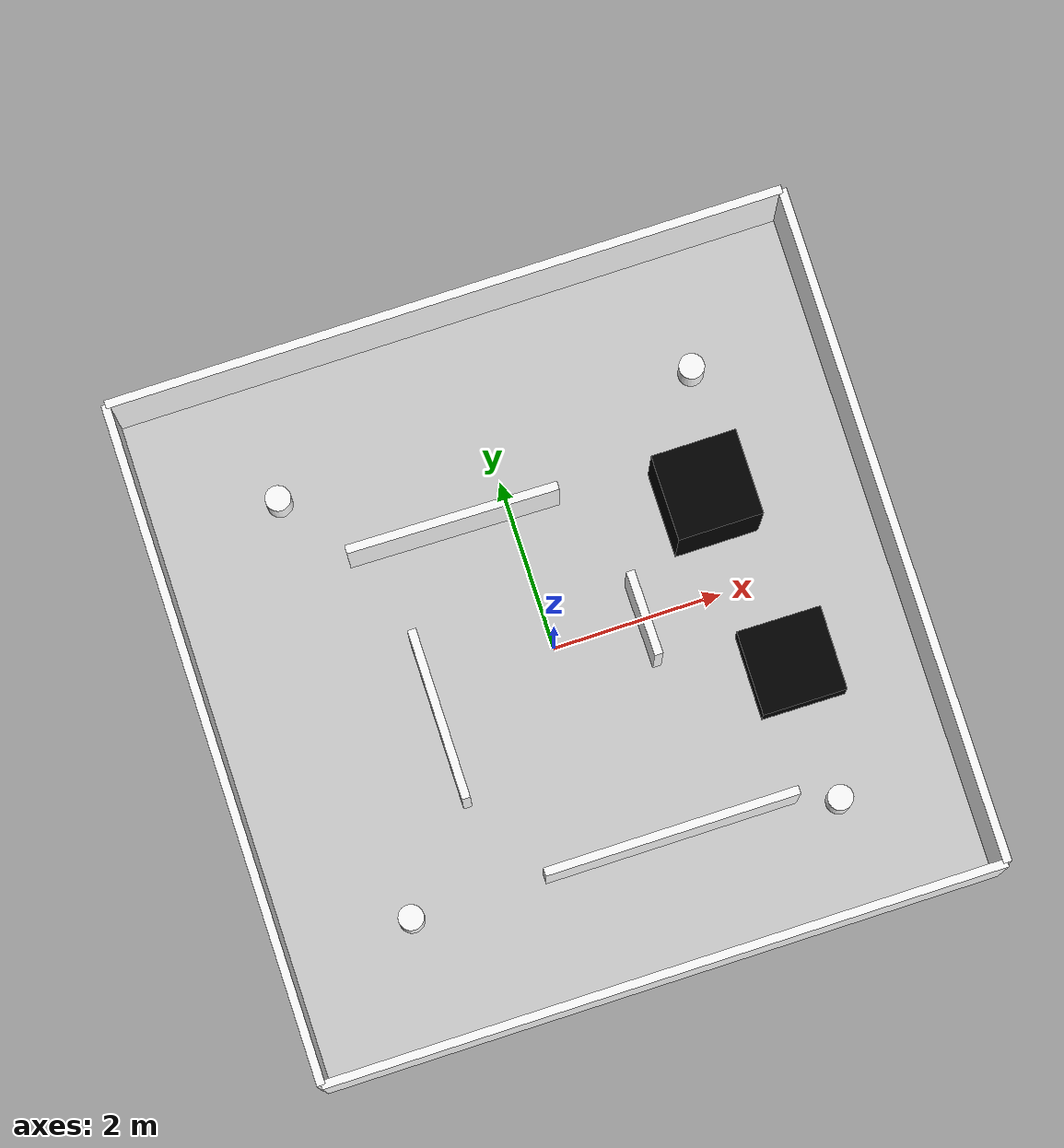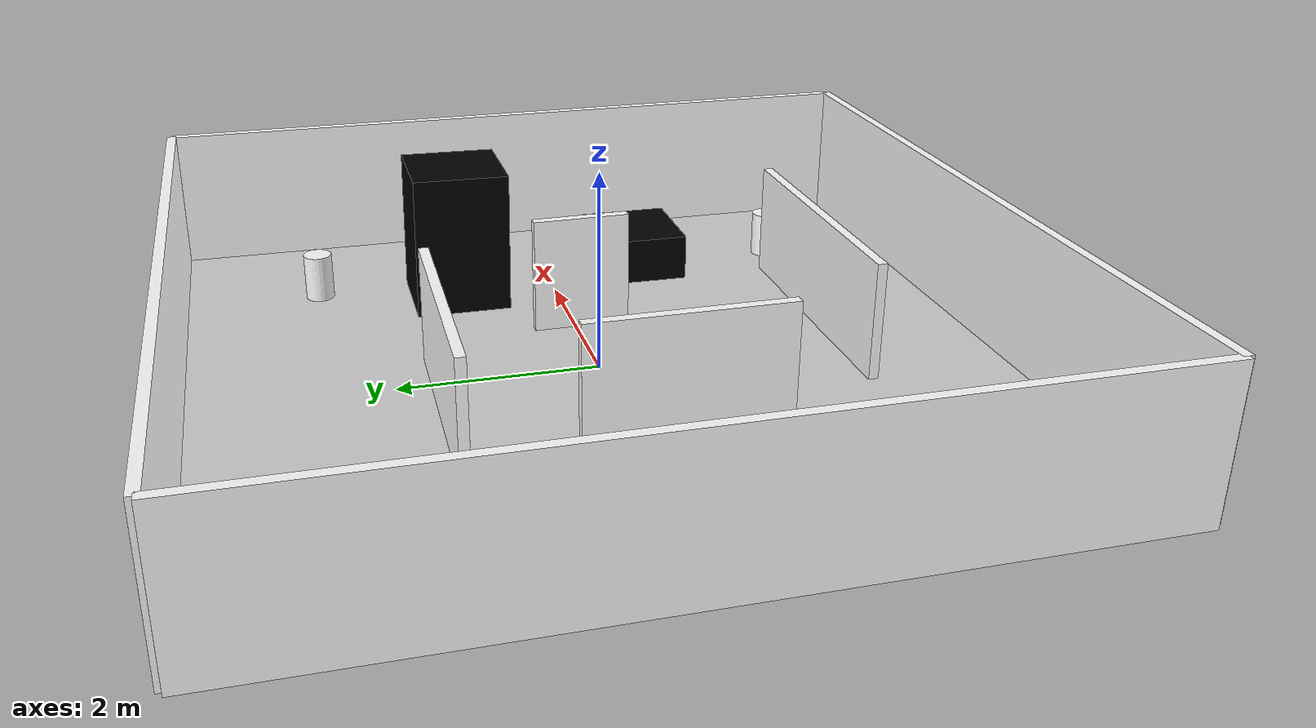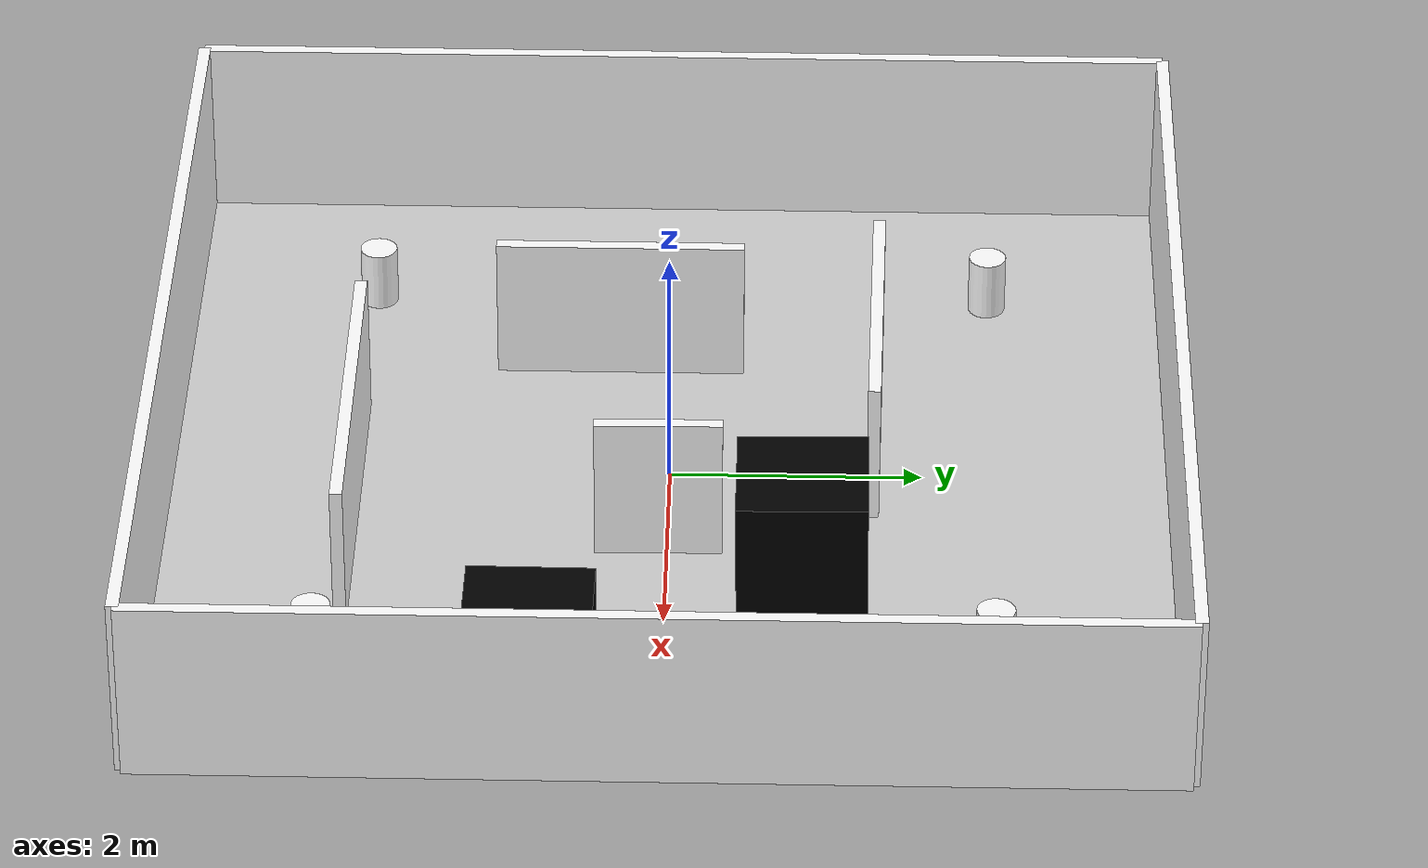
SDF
<sdf version='1.10'>
  <world name='test_env'>
    <scene>
      <ambient>0.600000024 0.600000024 0.600000024 1</ambient>
      <background>0.800000012 0.800000012 0.800000012 1</background>
      <shadows>true</shadows>
    </scene>
    <gravity>0 0 -9.8000000000000007</gravity>
    <magnetic_field>5.5644999999999998e-06 2.2875799999999999e-05 -4.2388400000000002e-05</magnetic_field>
    <atmosphere type='adiabatic'/>
    <physics type='ode'>
      <max_step_size>0.001</max_step_size>
      <real_time_factor>1</real_time_factor>
      <real_time_update_rate>1000</real_time_update_rate>
    </physics>
    <model name='ground'>
      <static>true</static>
      <link name='ground_link'>
        <collision name='ground_collision'>
          <geometry>
            <box>
              <size>8 8 0.01</size>
            </box>
          </geometry>
          <surface>
            <friction>
              <ode/>
            </friction>
            <bounce/>
            <contact/>
          </surface>
        </collision>
        <visual name='ground_visual'>
          <geometry>
            <box>
              <size>8 8 0.01</size>
            </box>
          </geometry>
          <material>
            <ambient>0.800000012 0.800000012 0.800000012 1</ambient>
            <diffuse>0.800000012 0.800000012 0.800000012 1</diffuse>
            <specular>0.200000003 0.200000003 0.200000003 1</specular>
          </material>
        </visual>
        <pose>0 0 0 0 0 0</pose>
        <inertial>
          <pose>0 0 0 0 0 0</pose>
          <mass>1</mass>
          <inertia>
            <ixx>1</ixx>
            <ixy>0</ixy>
            <ixz>0</ixz>
            <iyy>1</iyy>
            <iyz>0</iyz>
            <izz>1</izz>
          </inertia>
        </inertial>
        <enable_wind>false</enable_wind>
      </link>
      <pose>0 0 0 0 0 0</pose>
      <self_collide>false</self_collide>
    </model>
    <model name='wall_north'>
      <static>true</static>
      <pose>0 4 0.75 0 0 0</pose>
      <link name='link'>
        <visual name='wall_north_visual'>
          <geometry>
            <box>
              <size>8 0.10000000000000001 1.5</size>
            </box>
          </geometry>
          <material>
            <ambient>1 1 1 1</ambient>
            <diffuse>1 1 1 1</diffuse>
          </material>
        </visual>
        <collision name='wall_north_collision'>
          <geometry>
            <box>
              <size>8 0.10000000000000001 1.5</size>
            </box>
          </geometry>
          <surface>
            <friction>
              <ode/>
            </friction>
            <bounce/>
            <contact/>
          </surface>
        </collision>
        <pose>0 0 0 0 0 0</pose>
        <inertial>
          <pose>0 0 0 0 0 0</pose>
          <mass>1</mass>
          <inertia>
            <ixx>1</ixx>
            <ixy>0</ixy>
            <ixz>0</ixz>
            <iyy>1</iyy>
            <iyz>0</iyz>
            <izz>1</izz>
          </inertia>
        </inertial>
        <enable_wind>false</enable_wind>
      </link>
      <self_collide>false</self_collide>
    </model>
    <model name='wall_south'>
      <static>true</static>
      <pose>0 -4 0.75 0 0 0</pose>
      <link name='link'>
        <visual name='wall_south_visual'>
          <geometry>
            <box>
              <size>8 0.10000000000000001 1.5</size>
            </box>
          </geometry>
          <material>
            <ambient>1 1 1 1</ambient>
            <diffuse>1 1 1 1</diffuse>
          </material>
        </visual>
        <collision name='wall_south_collision'>
          <geometry>
            <box>
              <size>8 0.10000000000000001 1.5</size>
            </box>
          </geometry>
          <surface>
            <friction>
              <ode/>
            </friction>
            <bounce/>
            <contact/>
          </surface>
        </collision>
        <pose>0 0 0 0 0 0</pose>
        <inertial>
          <pose>0 0 0 0 0 0</pose>
          <mass>1</mass>
          <inertia>
            <ixx>1</ixx>
            <ixy>0</ixy>
            <ixz>0</ixz>
            <iyy>1</iyy>
            <iyz>0</iyz>
            <izz>1</izz>
          </inertia>
        </inertial>
        <enable_wind>false</enable_wind>
      </link>
      <self_collide>false</self_collide>
    </model>
    <model name='wall_east'>
      <static>true</static>
      <pose>4 0 0.75 0 0 1.5708000000000011</pose>
      <link name='link'>
        <visual name='wall_east_visual'>
          <geometry>
            <box>
              <size>8 0.10000000000000001 1.5</size>
            </box>
          </geometry>
          <material>
            <ambient>1 1 1 1</ambient>
            <diffuse>1 1 1 1</diffuse>
          </material>
        </visual>
        <collision name='wall_east_collision'>
          <geometry>
            <box>
              <size>8 0.10000000000000001 1.5</size>
            </box>
          </geometry>
          <surface>
            <friction>
              <ode/>
            </friction>
            <bounce/>
            <contact/>
          </surface>
        </collision>
        <pose>0 0 0 0 0 0</pose>
        <inertial>
          <pose>0 0 0 0 0 0</pose>
          <mass>1</mass>
          <inertia>
            <ixx>1</ixx>
            <ixy>0</ixy>
            <ixz>0</ixz>
            <iyy>1</iyy>
            <iyz>0</iyz>
            <izz>1</izz>
          </inertia>
        </inertial>
        <enable_wind>false</enable_wind>
      </link>
      <self_collide>false</self_collide>
    </model>
    <model name='wall_west'>
      <static>true</static>
      <pose>-4 0 0.75 0 0 1.5708000000000011</pose>
      <link name='link'>
        <visual name='wall_west_visual'>
          <geometry>
            <box>
              <size>8 0.10000000000000001 1.5</size>
            </box>
          </geometry>
          <material>
            <ambient>1 1 1 1</ambient>
            <diffuse>1 1 1 1</diffuse>
          </material>
        </visual>
        <collision name='wall_west_collision'>
          <geometry>
            <box>
              <size>8 0.10000000000000001 1.5</size>
            </box>
          </geometry>
          <surface>
            <friction>
              <ode/>
            </friction>
            <bounce/>
            <contact/>
          </surface>
        </collision>
        <pose>0 0 0 0 0 0</pose>
        <inertial>
          <pose>0 0 0 0 0 0</pose>
          <mass>1</mass>
          <inertia>
            <ixx>1</ixx>
            <ixy>0</ixy>
            <ixz>0</ixz>
            <iyy>1</iyy>
            <iyz>0</iyz>
            <izz>1</izz>
          </inertia>
        </inertial>
        <enable_wind>false</enable_wind>
      </link>
      <self_collide>false</self_collide>
    </model>
    <model name='inner_wall_center'>
      <static>true</static>
      <pose>0.57874101400375366 -2.4953799247741699 0.60000002384185791 0 0 0</pose>
      <link name='link'>
        <visual name='inner_wall_center_visual'>
          <geometry>
            <box>
              <size>3 0.10000000000000001 1.2</size>
            </box>
          </geometry>
          <material>
            <ambient>1 1 1 1</ambient>
            <diffuse>1 1 1 1</diffuse>
          </material>
        </visual>
        <collision name='inner_wall_center_collision'>
          <geometry>
            <box>
              <size>3 0.10000000000000001 1.2</size>
            </box>
          </geometry>
          <surface>
            <friction>
              <ode/>
            </friction>
            <bounce/>
            <contact/>
          </surface>
        </collision>
        <pose>0 0 0 0 0 0</pose>
        <inertial>
          <pose>0 0 0 0 0 0</pose>
          <mass>1</mass>
          <inertia>
            <ixx>1</ixx>
            <ixy>0</ixy>
            <ixz>0</ixz>
            <iyy>1</iyy>
            <iyz>0</iyz>
            <izz>1</izz>
          </inertia>
        </inertial>
        <enable_wind>false</enable_wind>
      </link>
      <self_collide>false</self_collide>
    </model>
    <model name='inner_wall_left'>
      <static>true</static>
      <pose>-1.4999946355819702 -0.44050788879394531 0.60000002384185791 0 0 1.5708000357176291</pose>
      <link name='link'>
        <visual name='inner_wall_left_visual'>
          <geometry>
            <box>
              <size>2 0.10000000000000001 1.2</size>
            </box>
          </geometry>
          <material>
            <ambient>1 1 1 1</ambient>
            <diffuse>1 1 1 1</diffuse>
          </material>
        </visual>
        <collision name='inner_wall_left_collision'>
          <geometry>
            <box>
              <size>2 0.10000000000000001 1.2</size>
            </box>
          </geometry>
          <surface>
            <friction>
              <ode/>
            </friction>
            <bounce/>
            <contact/>
          </surface>
        </collision>
        <pose>0 0 0 0 0 0</pose>
        <inertial>
          <pose>0 0 0 0 0 0</pose>
          <mass>1</mass>
          <inertia>
            <ixx>1</ixx>
            <ixy>0</ixy>
            <ixz>0</ixz>
            <iyy>1</iyy>
            <iyz>0</iyz>
            <izz>1</izz>
          </inertia>
        </inertial>
        <enable_wind>false</enable_wind>
      </link>
      <self_collide>false</self_collide>
    </model>
    <model name='inner_wall_right'>
      <static>true</static>
      <pose>-0.68037950992584229 1.6283901929855347 0.60000002384185791 0 0 -0.015647999861142882</pose>
      <link name='link'>
        <visual name='inner_wall_right_visual'>
          <geometry>
            <box>
              <size>2.5 0.10000000000000001 1.2</size>
            </box>
          </geometry>
          <material>
            <ambient>1 1 1 1</ambient>
            <diffuse>1 1 1 1</diffuse>
          </material>
        </visual>
        <collision name='inner_wall_right_collision'>
          <geometry>
            <box>
              <size>2.5 0.10000000000000001 1.2</size>
            </box>
          </geometry>
          <surface>
            <friction>
              <ode/>
            </friction>
            <bounce/>
            <contact/>
          </surface>
        </collision>
        <pose>0 0 0 0 0 0</pose>
        <inertial>
          <pose>0 0 0 0 0 0</pose>
          <mass>1</mass>
          <inertia>
            <ixx>1</ixx>
            <ixy>0</ixy>
            <ixz>0</ixz>
            <iyy>1</iyy>
            <iyz>0</iyz>
            <izz>1</izz>
          </inertia>
        </inertial>
        <enable_wind>false</enable_wind>
      </link>
      <self_collide>false</self_collide>
    </model>
    <model name='inner_wall_small'>
      <static>true</static>
      <pose>1.0476727485656738 -0.065696433186531067 0.60000002384185791 0 0 -1.5566599876715277</pose>
      <link name='link'>
        <visual name='inner_wall_small_visual'>
          <geometry>
            <box>
              <size>1 0.10000000000000001 1.2</size>
            </box>
          </geometry>
          <material>
            <ambient>1 1 1 1</ambient>
            <diffuse>1 1 1 1</diffuse>
          </material>
        </visual>
        <collision name='inner_wall_small_collision'>
          <geometry>
            <box>
              <size>1 0.10000000000000001 1.2</size>
            </box>
          </geometry>
          <surface>
            <friction>
              <ode/>
            </friction>
            <bounce/>
            <contact/>
          </surface>
        </collision>
        <pose>0 0 0 0 0 0</pose>
        <inertial>
          <pose>0 0 0 0 0 0</pose>
          <mass>1</mass>
          <inertia>
            <ixx>1</ixx>
            <ixy>0</ixy>
            <ixz>0</ixz>
            <iyy>1</iyy>
            <iyz>0</iyz>
            <izz>1</izz>
          </inertia>
        </inertial>
        <enable_wind>false</enable_wind>
      </link>
      <self_collide>false</self_collide>
    </model>
    <model name='small_cylinder'>
      <static>true</static>
      <pose>2.5427742004394531 -2.6743400096893311 0.25 0 0 0</pose>
      <link name='link'>
        <visual name='cylinder_visual'>
          <geometry>
            <cylinder>
              <radius>0.14999999999999999</radius>
              <length>0.5</length>
            </cylinder>
          </geometry>
          <material>
            <ambient>1 1 1 1</ambient>
            <diffuse>1 1 1 1</diffuse>
          </material>
        </visual>
        <collision name='cylinder_collision'>
          <geometry>
            <cylinder>
              <radius>0.14999999999999999</radius>
              <length>0.5</length>
            </cylinder>
          </geometry>
          <surface>
            <friction>
              <ode/>
            </friction>
            <bounce/>
            <contact/>
          </surface>
        </collision>
        <pose>0 0 0 0 0 0</pose>
        <inertial>
          <pose>0 0 0 0 0 0</pose>
          <mass>1</mass>
          <inertia>
            <ixx>1</ixx>
            <ixy>0</ixy>
            <ixz>0</ixz>
            <iyy>1</iyy>
            <iyz>0</iyz>
            <izz>1</izz>
          </inertia>
        </inertial>
        <enable_wind>false</enable_wind>
      </link>
      <self_collide>false</self_collide>
    </model>
    <model name='tall_box'>
      <static>true</static>
      <pose>2.1467299461364746 1.0647604465484619 0.7490958571434021 -3.1302399997391537 0 0</pose>
      <link name='link'>
        <visual name='tall_box_visual'>
          <geometry>
            <box>
              <size>1 1 1.5</size>
            </box>
          </geometry>
          <material>
            <ambient>0 0 0 1</ambient>
            <diffuse>0 0 0 1</diffuse>
          </material>
        </visual>
        <collision name='tall_box_collision'>
          <geometry>
            <box>
              <size>1 1 1.5</size>
            </box>
          </geometry>
          <surface>
            <friction>
              <ode/>
            </friction>
            <bounce/>
            <contact/>
          </surface>
        </collision>
        <pose>0 0 0 0 0 0</pose>
        <inertial>
          <pose>0 0 0 0 0 0</pose>
          <mass>1</mass>
          <inertia>
            <ixx>1</ixx>
            <ixy>0</ixy>
            <ixz>0</ixz>
            <iyy>1</iyy>
            <iyz>0</iyz>
            <izz>1</izz>
          </inertia>
        </inertial>
        <enable_wind>false</enable_wind>
      </link>
      <self_collide>false</self_collide>
    </model>
    <model name='short_box'>
      <static>true</static>
      <pose>2.5079176425933838 -1.0230826139450073 0.25 0 0 -1.5799999666581637</pose>
      <link name='link'>
        <visual name='short_box_visual'>
          <geometry>
            <box>
              <size>1 1 0.5</size>
            </box>
          </geometry>
          <material>
            <ambient>0 0 0 1</ambient>
            <diffuse>0 0 0 1</diffuse>
          </material>
        </visual>
        <collision name='short_box_collision'>
          <geometry>
            <box>
              <size>1 1 0.5</size>
            </box>
          </geometry>
          <surface>
            <friction>
              <ode/>
            </friction>
            <bounce/>
            <contact/>
          </surface>
        </collision>
        <pose>0 0 0 0 0 0</pose>
        <inertial>
          <pose>0 0 0 0 0 0</pose>
          <mass>1</mass>
          <inertia>
            <ixx>1</ixx>
            <ixy>0</ixy>
            <ixz>0</ixz>
            <iyy>1</iyy>
            <iyz>0</iyz>
            <izz>1</izz>
          </inertia>
        </inertial>
        <enable_wind>false</enable_wind>
      </link>
      <self_collide>false</self_collide>
    </model>
    <model name='small_cylinder_2'>
      <static>true</static>
      <pose>-2.4968376137683648 -2.4692974437883155 0.25 0 0 0</pose>
      <link name='link'>
        <visual name='cylinder_visual'>
          <geometry>
            <cylinder>
              <radius>0.14999999999999999</radius>
              <length>0.5</length>
            </cylinder>
          </geometry>
          <material>
            <ambient>1 1 1 1</ambient>
            <diffuse>1 1 1 1</diffuse>
          </material>
        </visual>
        <collision name='cylinder_collision'>
          <geometry>
            <cylinder>
              <radius>0.14999999999999999</radius>
              <length>0.5</length>
            </cylinder>
          </geometry>
          <surface>
            <friction>
              <ode/>
            </friction>
            <bounce/>
            <contact/>
          </surface>
        </collision>
        <pose>0 0 0 0 0 0</pose>
        <inertial>
          <pose>0 0 0 0 0 0</pose>
          <mass>1</mass>
          <inertia>
            <ixx>1</ixx>
            <ixy>0</ixy>
            <ixz>0</ixz>
            <iyy>1</iyy>
            <iyz>0</iyz>
            <izz>1</izz>
          </inertia>
        </inertial>
        <enable_wind>false</enable_wind>
      </link>
      <self_collide>false</self_collide>
    </model>
    <model name='small_cylinder_3'>
      <static>true</static>
      <pose>-2.4818921543312271 2.549428712204898 0.25 0 0 0</pose>
      <link name='link'>
        <visual name='cylinder_visual'>
          <geometry>
            <cylinder>
              <radius>0.14999999999999999</radius>
              <length>0.5</length>
            </cylinder>
          </geometry>
          <material>
            <ambient>1 1 1 1</ambient>
            <diffuse>1 1 1 1</diffuse>
          </material>
        </visual>
        <collision name='cylinder_collision'>
          <geometry>
            <cylinder>
              <radius>0.14999999999999999</radius>
              <length>0.5</length>
            </cylinder>
          </geometry>
          <surface>
            <friction>
              <ode/>
            </friction>
            <bounce/>
            <contact/>
          </surface>
        </collision>
        <pose>0 0 0 0 0 0</pose>
        <inertial>
          <pose>0 0 0 0 0 0</pose>
          <mass>1</mass>
          <inertia>
            <ixx>1</ixx>
            <ixy>0</ixy>
            <ixz>0</ixz>
            <iyy>1</iyy>
            <iyz>0</iyz>
            <izz>1</izz>
          </inertia>
        </inertial>
        <enable_wind>false</enable_wind>
      </link>
      <self_collide>false</self_collide>
    </model>
    <model name='small_cylinder_1'>
      <static>true</static>
      <pose>2.4802584102539043 2.5453269397214524 0.25 0 0 0</pose>
      <link name='link'>
        <visual name='cylinder_visual'>
          <geometry>
            <cylinder>
              <radius>0.14999999999999999</radius>
              <length>0.5</length>
            </cylinder>
          </geometry>
          <material>
            <ambient>1 1 1 1</ambient>
            <diffuse>1 1 1 1</diffuse>
          </material>
        </visual>
        <collision name='cylinder_collision'>
          <geometry>
            <cylinder>
              <radius>0.14999999999999999</radius>
              <length>0.5</length>
            </cylinder>
          </geometry>
          <surface>
            <friction>
              <ode/>
            </friction>
            <bounce/>
            <contact/>
          </surface>
        </collision>
        <pose>0 0 0 0 0 0</pose>
        <inertial>
          <pose>0 0 0 0 0 0</pose>
          <mass>1</mass>
          <inertia>
            <ixx>1</ixx>
            <ixy>0</ixy>
            <ixz>0</ixz>
            <iyy>1</iyy>
            <iyz>0</iyz>
            <izz>1</izz>
          </inertia>
        </inertial>
        <enable_wind>false</enable_wind>
      </link>
      <self_collide>false</self_collide>
    </model>
    <light name='sun' type='directional'>
      <pose>0 0 0 0 0 0</pose>
      <cast_shadows>false</cast_shadows>
      <intensity>1</intensity>
      <direction>-0.5 -0.5 -1</direction>
      <diffuse>1 1 1 1</diffuse>
      <specular>0.100000001 0.100000001 0.100000001 1</specular>
      <attenuation>
        <range>1000</range>
        <linear>1</linear>
        <constant>1</constant>
        <quadratic>0</quadratic>
      </attenuation>
      <spot>
        <inner_angle>0</inner_angle>
        <outer_angle>0</outer_angle>
        <falloff>0</falloff>
      </spot>
    </light>
  </world>
</sdf>
